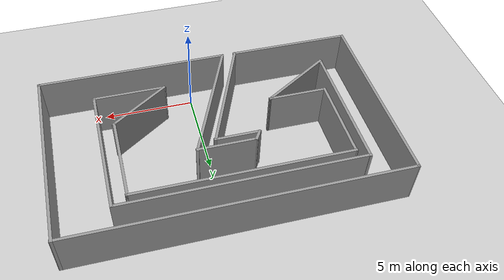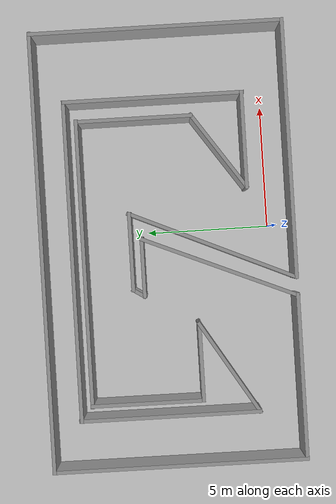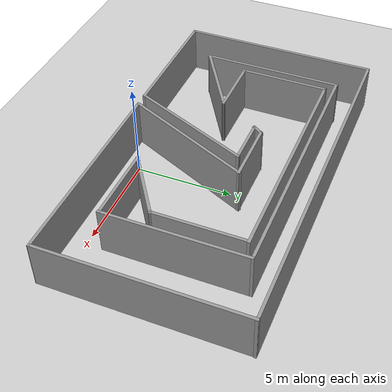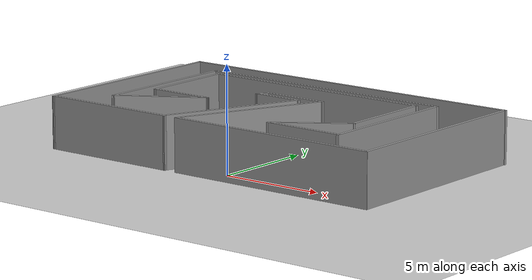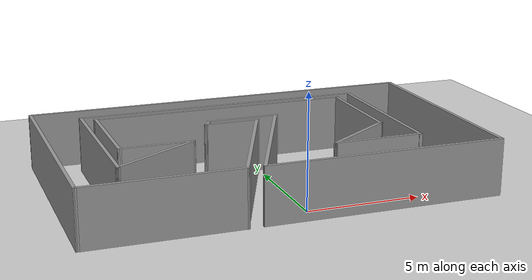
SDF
<sdf version="1.7">
 <world name="default">
  <light name="sun" type="directional">
   <pose>0 0 10 0 -0 0</pose>
   <diffuse>0.8 0.8 0.8 1</diffuse>
   <specular>0.2 0.2 0.2 1</specular>
   <attenuation>
    <range>1000</range>
    <constant>0.9</constant>
    <linear>0.01</linear>
    <quadratic>0.001</quadratic>
   </attenuation>
   <direction>-0.5 0.1 -0.9</direction>
   <spot><inner_angle>0</inner_angle><outer_angle>0</outer_angle><falloff>0</falloff></spot>
  </light>
  <model name="ground_plane">
   <static>1</static>
   <link name="link">
    <collision name="collision">
     <geometry><plane><normal>0 0 1</normal><size>100 100</size></plane></geometry>
     <surface><friction><ode><mu>100</mu><mu2>50</mu2></ode></friction></surface>
    </collision>
    <visual name="visual">
     <cast_shadows>0</cast_shadows>
     <geometry><plane><normal>0 0 1</normal><size>100 100</size></plane></geometry>
     <material>
      <script><uri>file://media/materials/scripts/gazebo.material</uri><name>Gazebo/Grey</name></script>
     </material>
    </visual>
   </link>
  </model>
  <gravity>0 0 -9.8</gravity>
  <magnetic_field>6e-06 2.3e-05 -4.2e-05</magnetic_field>
  <atmosphere type="adiabatic"/>
  <physics type="ode">
   <max_step_size>0.001</max_step_size>
   <real_time_factor>1</real_time_factor>
   <real_time_update_rate>1000</real_time_update_rate>
  </physics>
  <scene><ambient>0.4 0.4 0.4 1</ambient><background>0.7 0.7 0.7 1</background><shadows>1</shadows></scene>
  <audio><device>default</device></audio>
  <spherical_coordinates>
   <surface_model>EARTH_WGS84</surface_model>
   <latitude_deg>0</latitude_deg>
   <longitude_deg>0</longitude_deg>
   <elevation>0</elevation>
   <heading_deg>0</heading_deg>
  </spherical_coordinates>
  <model name="exam_world">
   <pose>-0.58392 4.20646 0 0 -0 0</pose>
   <link name="Wall_0">
    <collision name="Wall_0_Collision">
     <geometry><box><size>10.6064 0.15 2.5</size></box></geometry>
     <pose>0 0 1.25 0 -0 0</pose>
    </collision>
    <visual name="Wall_0_Visual">
     <pose>0 0 1.25 0 -0 0</pose>
     <geometry><box><size>10.6064 0.15 2.5</size></box></geometry>
     <material>
      <script><uri>file://media/materials/scripts/gazebo.material</uri><name>Gazebo/Grey</name></script>
      <ambient>1 1 1 1</ambient>
     </material>
     <meta><layer>0</layer></meta>
    </visual>
    <pose>3.6836 -5.1238 0 0 -0 0</pose>
   </link>
   <link name="Wall_10">
    <collision name="Wall_10_Collision">
     <geometry><box><size>3.25 0.15 2.5</size></box></geometry>
     <pose>0 0 1.25 0 -0 0</pose>
    </collision>
    <visual name="Wall_10_Visual">
     <pose>0 0 1.25 0 -0 0</pose>
     <geometry><box><size>3.25 0.15 2.5</size></box></geometry>
     <material>
      <script><uri>file://media/materials/scripts/gazebo.material</uri><name>Gazebo/Grey</name></script>
      <ambient>1 1 1 1</ambient>
     </material>
     <meta><layer>0</layer></meta>
    </visual>
    <pose>-0.144455 1.52165 0 0 -0 0</pose>
   </link>
   <link name="Wall_11">
    <collision name="Wall_11_Collision">
     <geometry><box><size>7.42086 0.15 2.5</size></box></geometry>
     <pose>0 0 1.25 0 -0 0</pose>
    </collision>
    <visual name="Wall_11_Visual">
     <pose>0 0 1.25 0 -0 0</pose>
     <geometry><box><size>7.42086 0.15 2.5</size></box></geometry>
     <material>
      <script><uri>file://media/materials/scripts/gazebo.material</uri><name>Gazebo/Grey</name></script>
      <ambient>1 1 1 1</ambient>
     </material>
     <meta><layer>0</layer></meta>
    </visual>
    <pose>-0.06953 -1.77447 0 0 -0 -1.98859</pose>
   </link>
   <link name="Wall_13">
    <collision name="Wall_13_Collision">
     <geometry><box><size>4 0.15 2.5</size></box></geometry>
     <pose>0 0 1.25 0 -0 0</pose>
    </collision>
    <visual name="Wall_13_Visual">
     <pose>0 0 1.25 0 -0 0</pose>
     <geometry><box><size>4 0.15 2.5</size></box></geometry>
     <material>
      <script><uri>file://media/materials/scripts/gazebo.material</uri><name>Gazebo/Grey</name></script>
      <ambient>1 1 1 1</ambient>
     </material>
     <meta><layer>0</layer></meta>
    </visual>
    <pose>4.14434 -3.31958 0 0 -0 0</pose>
   </link>
   <link name="Wall_14">
    <collision name="Wall_14_Collision">
     <geometry><box><size>7.3936 0.15 2.5</size></box></geometry>
     <pose>0 0 1.25 0 -0 0</pose>
    </collision>
    <visual name="Wall_14_Visual">
     <pose>0 0 1.25 0 -0 0</pose>
     <geometry><box><size>7.3936 0.15 2.5</size></box></geometry>
     <material>
      <script><uri>file://media/materials/scripts/gazebo.material</uri><name>Gazebo/Grey</name></script>
      <ambient>1 1 1 1</ambient>
     </material>
     <meta><layer>0</layer></meta>
    </visual>
    <pose>6.06934 0.275617 0 0 -0 1.5708</pose>
   </link>
   <link name="Wall_15">
    <collision name="Wall_15_Collision">
     <geometry><box><size>13.1116 0.15 2.5</size></box></geometry>
     <pose>0 0 1.25 0 -0 0</pose>
    </collision>
    <visual name="Wall_15_Visual">
     <pose>0 0 1.25 0 -0 0</pose>
     <geometry><box><size>13.1116 0.15 2.5</size></box></geometry>
     <material>
      <script><uri>file://media/materials/scripts/gazebo.material</uri><name>Gazebo/Grey</name></script>
      <ambient>1 1 1 1</ambient>
     </material>
     <meta><layer>0</layer></meta>
    </visual>
    <pose>-0.411454 3.92402 0 0 -0 3.14159</pose>
   </link>
   <link name="Wall_16">
    <collision name="Wall_16_Collision">
     <geometry><box><size>7.43035 0.15 2.5</size></box></geometry>
     <pose>0 0 1.25 0 -0 0</pose>
    </collision>
    <visual name="Wall_16_Visual">
     <pose>0 0 1.25 0 -0 0</pose>
     <geometry><box><size>7.43035 0.15 2.5</size></box></geometry>
     <material>
      <script><uri>file://media/materials/scripts/gazebo.material</uri><name>Gazebo/Grey</name></script>
      <ambient>1 1 1 1</ambient>
     </material>
     <meta><layer>0</layer></meta>
    </visual>
    <pose>-6.89743 0.310445 0 0 -0 -1.57222</pose>
   </link>
   <link name="Wall_2">
    <collision name="Wall_2_Collision">
     <geometry><box><size>10.3988 0.15 2.5</size></box></geometry>
     <pose>0 0 1.25 0 -0 0</pose>
    </collision>
    <visual name="Wall_2_Visual">
     <pose>0 0 1.25 0 -0 0</pose>
     <geometry><box><size>10.3988 0.15 2.5</size></box></geometry>
     <material>
      <script><uri>file://media/materials/scripts/gazebo.material</uri><name>Gazebo/Grey</name></script>
      <ambient>1 1 1 1</ambient>
     </material>
     <meta><layer>0</layer></meta>
    </visual>
    <pose>8.9118 0.027198 0 0 -0 1.5708</pose>
   </link>
   <link name="Wall_20">
    <collision name="Wall_20_Collision">
     <geometry><box><size>4.46984 0.15 2.5</size></box></geometry>
     <pose>0 0 1.25 0 -0 0</pose>
    </collision>
    <visual name="Wall_20_Visual">
     <pose>0 0 1.25 0 -0 0</pose>
     <geometry><box><size>4.46984 0.15 2.5</size></box></geometry>
     <material>
      <script><uri>file://media/materials/scripts/gazebo.material</uri><name>Gazebo/Grey</name></script>
      <ambient>1 1 1 1</ambient>
     </material>
     <meta><layer>0</layer></meta>
    </visual>
    <pose>-5.06432 -2.19574 0 0 -0 0.552732</pose>
   </link>
   <link name="Wall_21">
    <collision name="Wall_21_Collision">
     <geometry><box><size>3.25 0.15 2.5</size></box></geometry>
     <pose>0 0 1.25 0 -0 0</pose>
    </collision>
    <visual name="Wall_21_Visual">
     <pose>0 0 1.25 0 -0 0</pose>
     <geometry><box><size>3.25 0.15 2.5</size></box></geometry>
     <material>
      <script><uri>file://media/materials/scripts/gazebo.material</uri><name>Gazebo/Grey</name></script>
      <ambient>1 1 1 1</ambient>
     </material>
     <meta><layer>0</layer></meta>
    </visual>
    <pose>-4.77603 -1.06672 0 0 -0 3.14159</pose>
   </link>
   <link name="Wall_22">
    <collision name="Wall_22_Collision">
     <geometry><box><size>4.67346 0.15 2.5</size></box></geometry>
     <pose>0 0 1.25 0 -0 0</pose>
    </collision>
    <visual name="Wall_22_Visual">
     <pose>0 0 1.25 0 -0 0</pose>
     <geometry><box><size>4.67346 0.15 2.5</size></box></geometry>
     <material>
      <script><uri>file://media/materials/scripts/gazebo.material</uri><name>Gazebo/Grey</name></script>
      <ambient>1 1 1 1</ambient>
     </material>
     <meta><layer>0</layer></meta>
    </visual>
    <pose>-6.31824 1.195 0 0 -0 1.56735</pose>
   </link>
   <link name="Wall_23">
    <collision name="Wall_23_Collision">
     <geometry><box><size>11.7608 0.15 2.5</size></box></geometry>
     <pose>0 0 1.25 0 -0 0</pose>
    </collision>
    <visual name="Wall_23_Visual">
     <pose>0 0 1.25 0 -0 0</pose>
     <geometry><box><size>11.7608 0.15 2.5</size></box></geometry>
     <material>
      <script><uri>file://media/materials/scripts/gazebo.material</uri><name>Gazebo/Grey</name></script>
      <ambient>1 1 1 1</ambient>
     </material>
     <meta><layer>0</layer></meta>
    </visual>
    <pose>-0.531654 3.45671 0 0 -0 0</pose>
   </link>
   <link name="Wall_24">
    <collision name="Wall_24_Collision">
     <geometry><box><size>4.8086 0.15 2.5</size></box></geometry>
     <pose>0 0 1.25 0 -0 0</pose>
    </collision>
    <visual name="Wall_24_Visual">
     <pose>0 0 1.25 0 -0 0</pose>
     <geometry><box><size>4.8086 0.15 2.5</size></box></geometry>
     <material>
      <script><uri>file://media/materials/scripts/gazebo.material</uri><name>Gazebo/Grey</name></script>
      <ambient>1 1 1 1</ambient>
     </material>
     <meta><layer>0</layer></meta>
    </visual>
    <pose>5.24715 1.12741 0 0 -0 -1.5708</pose>
   </link>
   <link name="Wall_25">
    <collision name="Wall_25_Collision">
     <geometry><box><size>3.86672 0.15 2.5</size></box></geometry>
     <pose>0 0 1.25 0 -0 0</pose>
    </collision>
    <visual name="Wall_25_Visual">
     <pose>0 0 1.25 0 -0 0</pose>
     <geometry><box><size>3.86672 0.15 2.5</size></box></geometry>
     <material>
      <script><uri>file://media/materials/scripts/gazebo.material</uri><name>Gazebo/Grey</name></script>
      <ambient>1 1 1 1</ambient>
     </material>
     <meta><layer>0</layer></meta>
    </visual>
    <pose>3.74655 -2.26074 0 0 -0 -2.53536</pose>
   </link>
   <link name="Wall_3">
    <collision name="Wall_3_Collision">
     <geometry><box><size>18 0.15 2.5</size></box></geometry>
     <pose>0 0 1.25 0 -0 0</pose>
    </collision>
    <visual name="Wall_3_Visual">
     <pose>0 0 1.25 0 -0 0</pose>
     <geometry><box><size>18 0.15 2.5</size></box></geometry>
     <material>
      <script><uri>file://media/materials/scripts/gazebo.material</uri><name>Gazebo/Grey</name></script>
      <ambient>1 1 1 1</ambient>
     </material>
     <meta><layer>0</layer></meta>
    </visual>
    <pose>0.013397 5.1516 0 0 -0 3.14159</pose>
   </link>
   <link name="Wall_5">
    <collision name="Wall_5_Collision">
     <geometry><box><size>10.4254 0.15 2.5</size></box></geometry>
     <pose>0 0 1.25 0 -0 0</pose>
    </collision>
    <visual name="Wall_5_Visual">
     <pose>0 0 1.25 0 -0 0</pose>
     <geometry><box><size>10.4254 0.15 2.5</size></box></geometry>
     <material>
      <script><uri>file://media/materials/scripts/gazebo.material</uri><name>Gazebo/Grey</name></script>
      <ambient>1 1 1 1</ambient>
     </material>
     <meta><layer>0</layer></meta>
    </visual>
    <pose>-8.9249 0.013898 0 0 -0 -1.57339</pose>
   </link>
   <link name="Wall_6">
    <collision name="Wall_6_Collision">
     <geometry><box><size>6.79632 0.15 2.5</size></box></geometry>
     <pose>0 0 1.25 0 -0 0</pose>
    </collision>
    <visual name="Wall_6_Visual">
     <pose>0 0 1.25 0 -0 0</pose>
     <geometry><box><size>6.79632 0.15 2.5</size></box></geometry>
     <material>
      <script><uri>file://media/materials/scripts/gazebo.material</uri><name>Gazebo/Grey</name></script>
      <ambient>1 1 1 1</ambient>
     </material>
     <meta><layer>0</layer></meta>
    </visual>
    <pose>-5.58844 -5.1261 0 0 -0 -0.000692</pose>
   </link>
   <link name="Wall_7">
    <collision name="Wall_7_Collision">
     <geometry><box><size>6.89169 0.15 2.5</size></box></geometry>
     <pose>0 0 1.25 0 -0 0</pose>
    </collision>
    <visual name="Wall_7_Visual">
     <pose>0 0 1.25 0 -0 0</pose>
     <geometry><box><size>6.89169 0.15 2.5</size></box></geometry>
     <material>
      <script><uri>file://media/materials/scripts/gazebo.material</uri><name>Gazebo/Grey</name></script>
      <ambient>1 1 1 1</ambient>
     </material>
     <meta><layer>0</layer></meta>
    </visual>
    <pose>-0.972282 -2.02658 0 0 -0 1.16856</pose>
   </link>
   <link name="Wall_8">
    <collision name="Wall_8_Collision">
     <geometry><box><size>2.5 0.15 2.5</size></box></geometry>
     <pose>0 0 1.25 0 -0 0</pose>
    </collision>
    <visual name="Wall_8_Visual">
     <pose>0 0 1.25 0 -0 0</pose>
     <geometry><box><size>2.5 0.15 2.5</size></box></geometry>
     <material>
      <script><uri>file://media/materials/scripts/gazebo.material</uri><name>Gazebo/Grey</name></script>
      <ambient>1 1 1 1</ambient>
     </material>
     <meta><layer>0</layer></meta>
    </visual>
    <pose>-0.80455 1.07523 0 0 -0 3.14159</pose>
   </link>
   <link name="Wall_9">
    <collision name="Wall_9_Collision">
     <geometry><box><size>0.679689 0.15 2.5</size></box></geometry>
     <pose>0 0 1.25 0 -0 0</pose>
    </collision>
    <visual name="Wall_9_Visual">
     <pose>0 0 1.25 0 -0 0</pose>
     <geometry><box><size>0.679689 0.15 2.5</size></box></geometry>
     <material>
      <script><uri>file://media/materials/scripts/gazebo.material</uri><name>Gazebo/Grey</name></script>
      <ambient>1 1 1 1</ambient>
     </material>
     <meta><layer>0</layer></meta>
    </visual>
    <pose>-1.837 1.29844 0 0 -0 1.00246</pose>
   </link>
   <static>1</static>
  </model>
 </world>
</sdf>
